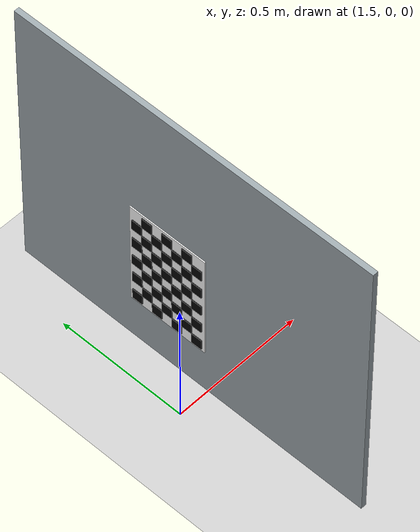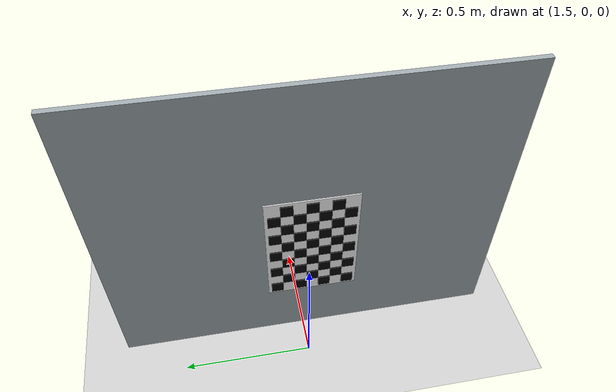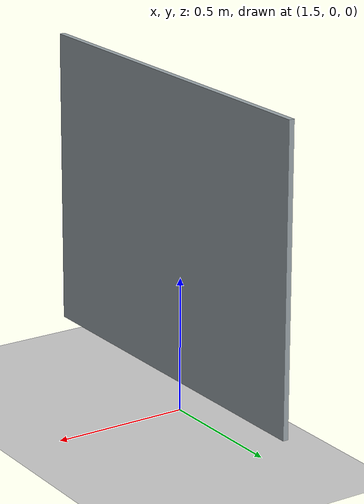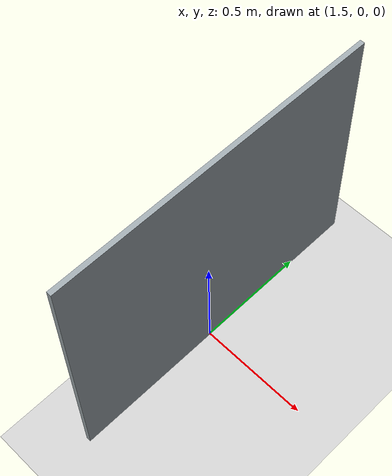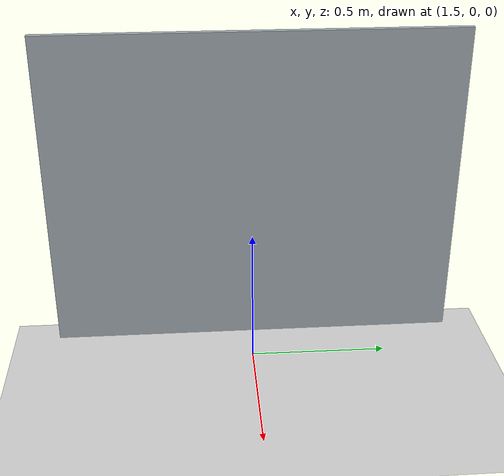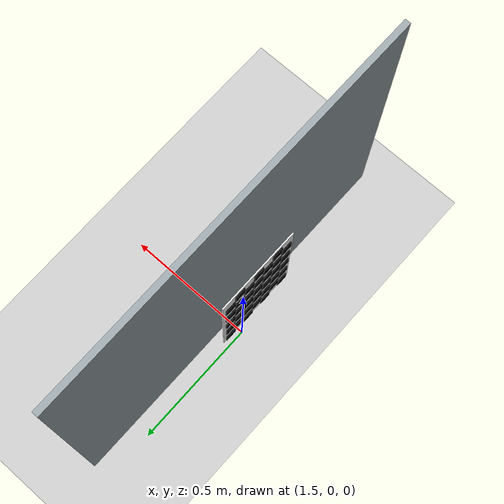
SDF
<?xml version="1.0"?>
<sdf version="1.6">
  <world name="camera_pose_lab">
    <include>
      <uri>model://sun</uri>
    </include>
    <include>
      <uri>model://ground_plane</uri>
    </include>

    <include>
      <name>calibration_checkerboard</name>
      <uri>model://calibration_checkerboard</uri>
      <pose>1.45 0 0.7 0 -1.5708 0</pose>
    </include>

    <model name="matte_backdrop">
      <static>true</static>
      <pose>1.55 0 0.7 0 0 0</pose>
      <link name="wall">
        <visual name="wall_visual">
          <geometry>
            <box>
              <size>0.02 1.4 1.1</size>
            </box>
          </geometry>
          <material>
            <ambient>0.62 0.66 0.68 1</ambient>
            <diffuse>0.62 0.66 0.68 1</diffuse>
          </material>
        </visual>
      </link>
    </model>

    <physics name="default_physics" type="ode">
      <max_step_size>0.001</max_step_size>
      <real_time_factor>1.0</real_time_factor>
      <real_time_update_rate>1000</real_time_update_rate>
    </physics>
  </world>
</sdf>

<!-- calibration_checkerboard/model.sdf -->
<sdf version="1.6">
  <model name="calibration_checkerboard">
    <static>true</static>
    <link name="board">
      <collision name="backing_collision">
        <geometry>
          <box>
            <size>0.42 0.30 0.006</size>
          </box>
        </geometry>
      </collision>
      <visual name="backing">
        <geometry>
          <box>
            <size>0.42 0.30 0.004</size>
          </box>
        </geometry>
        <material>
          <ambient>1 1 1 1</ambient>
          <diffuse>1 1 1 1</diffuse>
        </material>
      </visual>
      <visual name="black_0_0">
        <pose>-0.18 -0.12 0.004 0 0 0</pose>
        <geometry><box><size>0.04 0.04 0.004</size></box></geometry>
        <material><ambient>0.02 0.02 0.02 1</ambient><diffuse>0.02 0.02 0.02 1</diffuse></material>
      </visual>
      <visual name="black_0_2">
        <pose>-0.10 -0.12 0.004 0 0 0</pose>
        <geometry><box><size>0.04 0.04 0.004</size></box></geometry>
        <material><ambient>0.02 0.02 0.02 1</ambient><diffuse>0.02 0.02 0.02 1</diffuse></material>
      </visual>
      <visual name="black_0_4">
        <pose>-0.02 -0.12 0.004 0 0 0</pose>
        <geometry><box><size>0.04 0.04 0.004</size></box></geometry>
        <material><ambient>0.02 0.02 0.02 1</ambient><diffuse>0.02 0.02 0.02 1</diffuse></material>
      </visual>
      <visual name="black_0_6">
        <pose>0.06 -0.12 0.004 0 0 0</pose>
        <geometry><box><size>0.04 0.04 0.004</size></box></geometry>
        <material><ambient>0.02 0.02 0.02 1</ambient><diffuse>0.02 0.02 0.02 1</diffuse></material>
      </visual>
      <visual name="black_0_8">
        <pose>0.14 -0.12 0.004 0 0 0</pose>
        <geometry><box><size>0.04 0.04 0.004</size></box></geometry>
        <material><ambient>0.02 0.02 0.02 1</ambient><diffuse>0.02 0.02 0.02 1</diffuse></material>
      </visual>
      <visual name="black_1_1">
        <pose>-0.14 -0.08 0.004 0 0 0</pose>
        <geometry><box><size>0.04 0.04 0.004</size></box></geometry>
        <material><ambient>0.02 0.02 0.02 1</ambient><diffuse>0.02 0.02 0.02 1</diffuse></material>
      </visual>
      <visual name="black_1_3">
        <pose>-0.06 -0.08 0.004 0 0 0</pose>
        <geometry><box><size>0.04 0.04 0.004</size></box></geometry>
        <material><ambient>0.02 0.02 0.02 1</ambient><diffuse>0.02 0.02 0.02 1</diffuse></material>
      </visual>
      <visual name="black_1_5">
        <pose>0.02 -0.08 0.004 0 0 0</pose>
        <geometry><box><size>0.04 0.04 0.004</size></box></geometry>
        <material><ambient>0.02 0.02 0.02 1</ambient><diffuse>0.02 0.02 0.02 1</diffuse></material>
      </visual>
      <visual name="black_1_7">
        <pose>0.10 -0.08 0.004 0 0 0</pose>
        <geometry><box><size>0.04 0.04 0.004</size></box></geometry>
        <material><ambient>0.02 0.02 0.02 1</ambient><diffuse>0.02 0.02 0.02 1</diffuse></material>
      </visual>
      <visual name="black_1_9">
        <pose>0.18 -0.08 0.004 0 0 0</pose>
        <geometry><box><size>0.04 0.04 0.004</size></box></geometry>
        <material><ambient>0.02 0.02 0.02 1</ambient><diffuse>0.02 0.02 0.02 1</diffuse></material>
      </visual>
      <visual name="black_2_0">
        <pose>-0.18 -0.04 0.004 0 0 0</pose>
        <geometry><box><size>0.04 0.04 0.004</size></box></geometry>
        <material><ambient>0.02 0.02 0.02 1</ambient><diffuse>0.02 0.02 0.02 1</diffuse></material>
      </visual>
      <visual name="black_2_2">
        <pose>-0.10 -0.04 0.004 0 0 0</pose>
        <geometry><box><size>0.04 0.04 0.004</size></box></geometry>
        <material><ambient>0.02 0.02 0.02 1</ambient><diffuse>0.02 0.02 0.02 1</diffuse></material>
      </visual>
      <visual name="black_2_4">
        <pose>-0.02 -0.04 0.004 0 0 0</pose>
        <geometry><box><size>0.04 0.04 0.004</size></box></geometry>
        <material><ambient>0.02 0.02 0.02 1</ambient><diffuse>0.02 0.02 0.02 1</diffuse></material>
      </visual>
      <visual name="black_2_6">
        <pose>0.06 -0.04 0.004 0 0 0</pose>
        <geometry><box><size>0.04 0.04 0.004</size></box></geometry>
        <material><ambient>0.02 0.02 0.02 1</ambient><diffuse>0.02 0.02 0.02 1</diffuse></material>
      </visual>
      <visual name="black_2_8">
        <pose>0.14 -0.04 0.004 0 0 0</pose>
        <geometry><box><size>0.04 0.04 0.004</size></box></geometry>
        <material><ambient>0.02 0.02 0.02 1</ambient><diffuse>0.02 0.02 0.02 1</diffuse></material>
      </visual>
      <visual name="black_3_1">
        <pose>-0.14 0.00 0.004 0 0 0</pose>
        <geometry><box><size>0.04 0.04 0.004</size></box></geometry>
        <material><ambient>0.02 0.02 0.02 1</ambient><diffuse>0.02 0.02 0.02 1</diffuse></material>
      </visual>
      <visual name="black_3_3">
        <pose>-0.06 0.00 0.004 0 0 0</pose>
        <geometry><box><size>0.04 0.04 0.004</size></box></geometry>
        <material><ambient>0.02 0.02 0.02 1</ambient><diffuse>0.02 0.02 0.02 1</diffuse></material>
      </visual>
      <visual name="black_3_5">
        <pose>0.02 0.00 0.004 0 0 0</pose>
        <geometry><box><size>0.04 0.04 0.004</size></box></geometry>
        <material><ambient>0.02 0.02 0.02 1</ambient><diffuse>0.02 0.02 0.02 1</diffuse></material>
      </visual>
      <visual name="black_3_7">
        <pose>0.10 0.00 0.004 0 0 0</pose>
        <geometry><box><size>0.04 0.04 0.004</size></box></geometry>
        <material><ambient>0.02 0.02 0.02 1</ambient><diffuse>0.02 0.02 0.02 1</diffuse></material>
      </visual>
      <visual name="black_3_9">
        <pose>0.18 0.00 0.004 0 0 0</pose>
        <geometry><box><size>0.04 0.04 0.004</size></box></geometry>
        <material><ambient>0.02 0.02 0.02 1</ambient><diffuse>0.02 0.02 0.02 1</diffuse></material>
      </visual>
      <visual name="black_4_0">
        <pose>-0.18 0.04 0.004 0 0 0</pose>
        <geometry><box><size>0.04 0.04 0.004</size></box></geometry>
        <material><ambient>0.02 0.02 0.02 1</ambient><diffuse>0.02 0.02 0.02 1</diffuse></material>
      </visual>
      <visual name="black_4_2">
        <pose>-0.10 0.04 0.004 0 0 0</pose>
        <geometry><box><size>0.04 0.04 0.004</size></box></geometry>
        <material><ambient>0.02 0.02 0.02 1</ambient><diffuse>0.02 0.02 0.02 1</diffuse></material>
      </visual>
      <visual name="black_4_4">
        <pose>-0.02 0.04 0.004 0 0 0</pose>
        <geometry><box><size>0.04 0.04 0.004</size></box></geometry>
        <material><ambient>0.02 0.02 0.02 1</ambient><diffuse>0.02 0.02 0.02 1</diffuse></material>
      </visual>
      <visual name="black_4_6">
        <pose>0.06 0.04 0.004 0 0 0</pose>
        <geometry><box><size>0.04 0.04 0.004</size></box></geometry>
        <material><ambient>0.02 0.02 0.02 1</ambient><diffuse>0.02 0.02 0.02 1</diffuse></material>
      </visual>
      <visual name="black_4_8">
        <pose>0.14 0.04 0.004 0 0 0</pose>
        <geometry><box><size>0.04 0.04 0.004</size></box></geometry>
        <material><ambient>0.02 0.02 0.02 1</ambient><diffuse>0.02 0.02 0.02 1</diffuse></material>
      </visual>
      <visual name="black_5_1">
        <pose>-0.14 0.08 0.004 0 0 0</pose>
        <geometry><box><size>0.04 0.04 0.004</size></box></geometry>
        <material><ambient>0.02 0.02 0.02 1</ambient><diffuse>0.02 0.02 0.02 1</diffuse></material>
      </visual>
      <visual name="black_5_3">
        <pose>-0.06 0.08 0.004 0 0 0</pose>
        <geometry><box><size>0.04 0.04 0.004</size></box></geometry>
        <material><ambient>0.02 0.02 0.02 1</ambient><diffuse>0.02 0.02 0.02 1</diffuse></material>
      </visual>
      <visual name="black_5_5">
        <pose>0.02 0.08 0.004 0 0 0</pose>
        <geometry><box><size>0.04 0.04 0.004</size></box></geometry>
        <material><ambient>0.02 0.02 0.02 1</ambient><diffuse>0.02 0.02 0.02 1</diffuse></material>
      </visual>
      <visual name="black_5_7">
        <pose>0.10 0.08 0.004 0 0 0</pose>
        <geometry><box><size>0.04 0.04 0.004</size></box></geometry>
        <material><ambient>0.02 0.02 0.02 1</ambient><diffuse>0.02 0.02 0.02 1</diffuse></material>
      </visual>
      <visual name="black_5_9">
        <pose>0.18 0.08 0.004 0 0 0</pose>
        <geometry><box><size>0.04 0.04 0.004</size></box></geometry>
        <material><ambient>0.02 0.02 0.02 1</ambient><diffuse>0.02 0.02 0.02 1</diffuse></material>
      </visual>
      <visual name="black_6_0">
        <pose>-0.18 0.12 0.004 0 0 0</pose>
        <geometry><box><size>0.04 0.04 0.004</size></box></geometry>
        <material><ambient>0.02 0.02 0.02 1</ambient><diffuse>0.02 0.02 0.02 1</diffuse></material>
      </visual>
      <visual name="black_6_2">
        <pose>-0.10 0.12 0.004 0 0 0</pose>
        <geometry><box><size>0.04 0.04 0.004</size></box></geometry>
        <material><ambient>0.02 0.02 0.02 1</ambient><diffuse>0.02 0.02 0.02 1</diffuse></material>
      </visual>
      <visual name="black_6_4">
        <pose>-0.02 0.12 0.004 0 0 0</pose>
        <geometry><box><size>0.04 0.04 0.004</size></box></geometry>
        <material><ambient>0.02 0.02 0.02 1</ambient><diffuse>0.02 0.02 0.02 1</diffuse></material>
      </visual>
      <visual name="black_6_6">
        <pose>0.06 0.12 0.004 0 0 0</pose>
        <geometry><box><size>0.04 0.04 0.004</size></box></geometry>
        <material><ambient>0.02 0.02 0.02 1</ambient><diffuse>0.02 0.02 0.02 1</diffuse></material>
      </visual>
      <visual name="black_6_8">
        <pose>0.14 0.12 0.004 0 0 0</pose>
        <geometry><box><size>0.04 0.04 0.004</size></box></geometry>
        <material><ambient>0.02 0.02 0.02 1</ambient><diffuse>0.02 0.02 0.02 1</diffuse></material>
      </visual>
    </link>
  </model>
</sdf>
